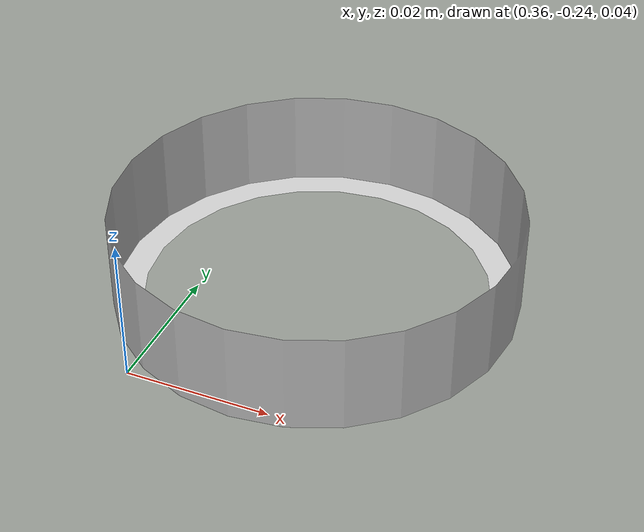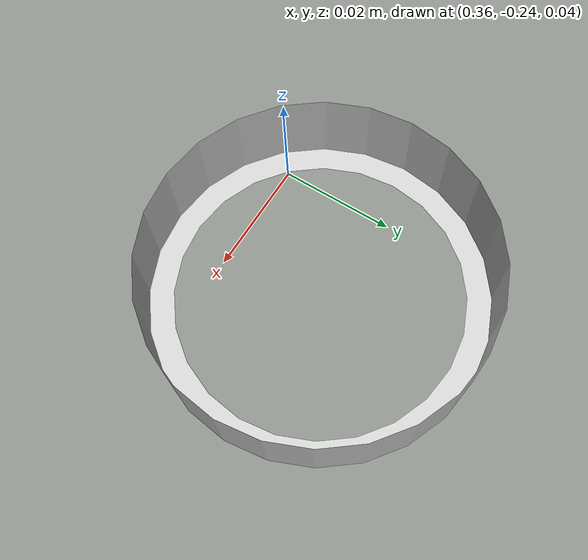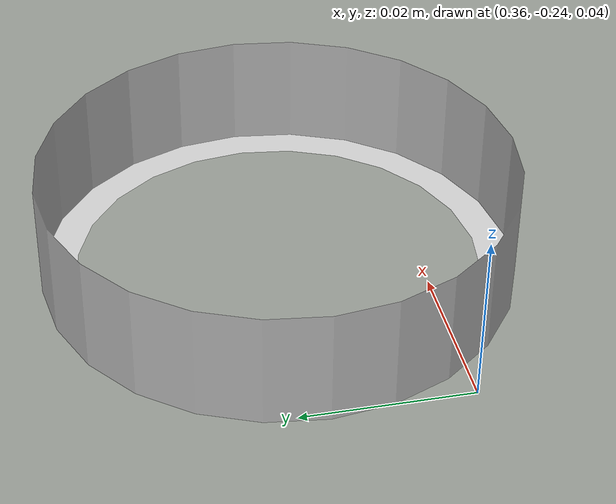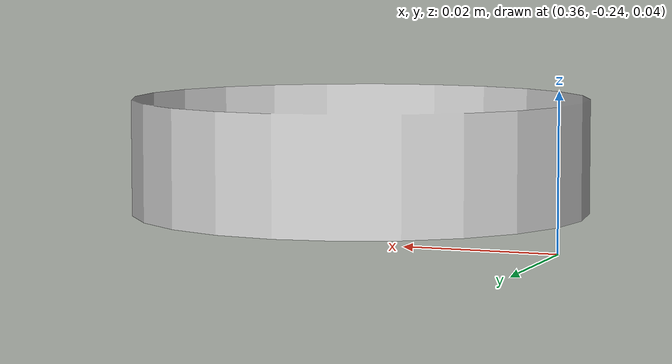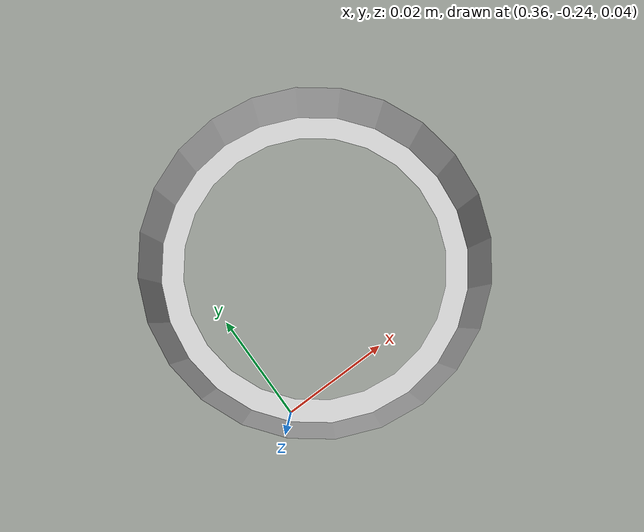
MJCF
<mujoco model="original-37">
  <default>
    <default class="visual">
      <geom group="2" type="mesh" contype="0" conaffinity="0"/>
    </default>
    <default class="collision">
      <geom group="3" type="mesh"/>
    </default>
  </default>
  <asset>
    <material name="material_0_0" specular="0.06666666666666667" shininess="0.03" rgba="0.8 0.8 0.8 1"/>
    <mesh file="original-37.obj"/>
  </asset>
  <worldbody>
    <body name="original-37">
      <geom material="material_0_0" mesh="original-37" class="visual"/>
      <geom mesh="original-37" class="collision"/>
    </body>
  </worldbody>
</mujoco>
